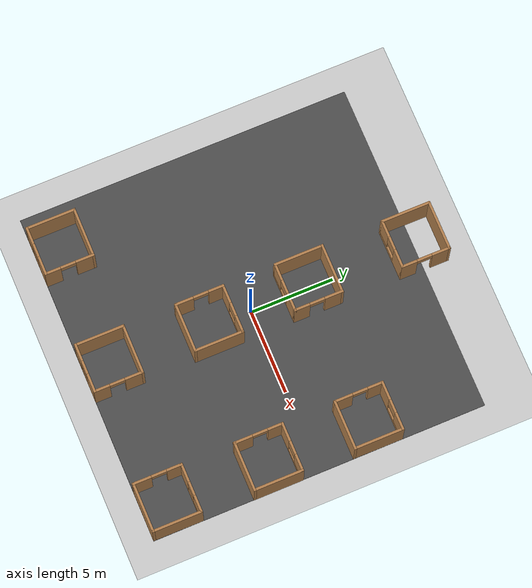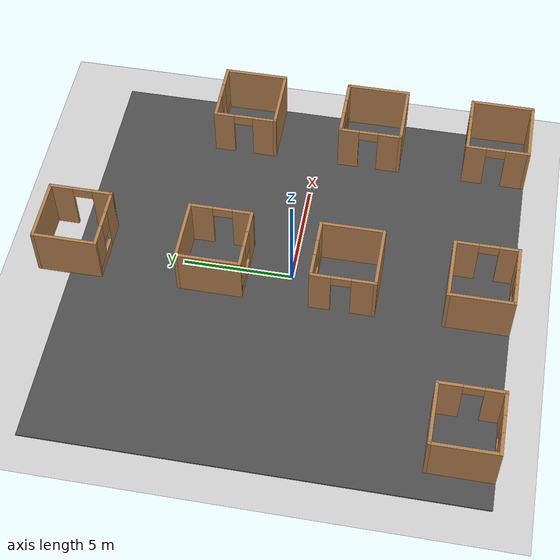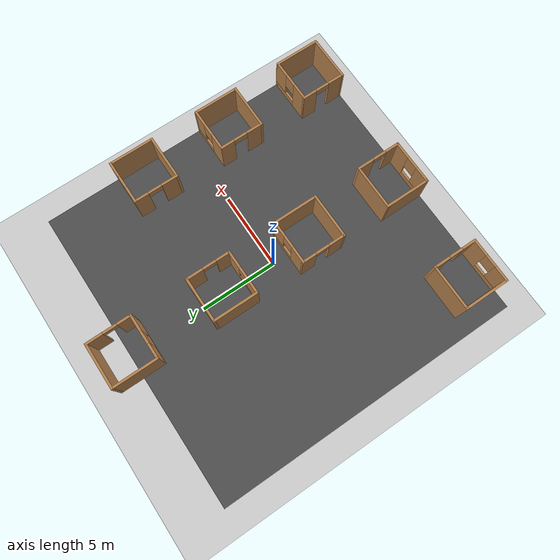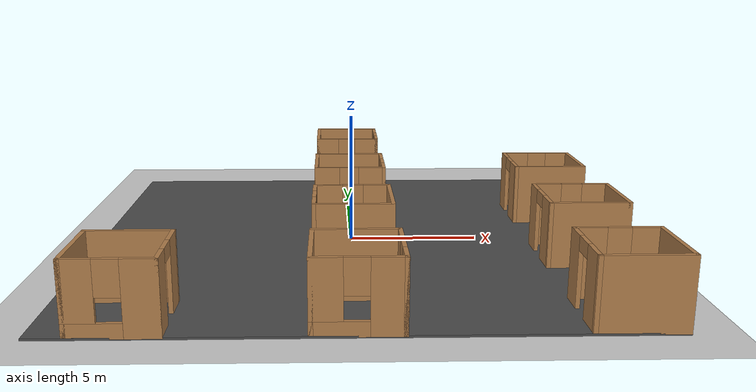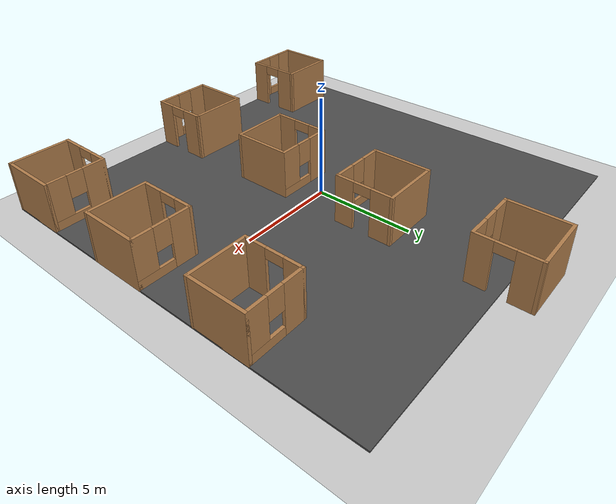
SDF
<sdf version="1.6">
 <world name="default">
  <model name="ground_plane">
   <static>1</static>
   <link name="link">
    <collision name="collision">
     <geometry><plane><normal>0 0 1</normal><size>100 100</size></plane></geometry>
     <surface><friction><ode><mu>100</mu><mu2>50</mu2></ode></friction></surface>
    </collision>
    <visual name="visual">
     <cast_shadows>0</cast_shadows>
     <geometry><plane><normal>0 0 1</normal><size>100 100</size></plane></geometry>
     <material>
      <script><uri>file://media/materials/scripts/gazebo.material</uri><name>Gazebo/Grey</name></script>
     </material>
    </visual>
   </link>
  </model>
  <model name="asphalt_plane">
   <static>1</static>
   <link name="link">
    <collision name="collision"><geometry><box><size>20 20 0.1</size></box></geometry></collision>
    <visual name="visual">
     <cast_shadows>0</cast_shadows>
     <geometry><box><size>20 20 0.1</size></box></geometry>
     <material>
      <script>
       <uri>model://asphalt_plane/materials/scripts</uri>
       <uri>model://asphalt_plane/materials/textures</uri>
       <name>vrc/asphalt</name>
      </script>
     </material>
    </visual>
   </link>
  </model>
  <model name="house1">
   <pose>8.5 -8.5 0 0 -0 0</pose>
   <link name="Wall_2">
    <pose>0 1.425 0 0 -0 0</pose>
    <visual name="Wall_2_Visual_0">
     <pose>-0.9275 0 1.25 0 -0 0</pose>
     <geometry><box><size>1.145 0.15 2.5</size></box></geometry>
     <material>
      <script><uri>file://media/materials/scripts/gazebo.material</uri><name>Gazebo/Wood</name></script>
      <ambient>1 1 1 1</ambient>
     </material>
     <meta><layer>0</layer></meta>
    </visual>
    <collision name="Wall_2_Collision_0">
     <geometry><box><size>1.145 0.15 2.5</size></box></geometry>
     <pose>-0.9275 0 1.25 0 -0 0</pose>
    </collision>
    <visual name="Wall_2_Visual_1">
     <pose>0.5725 0 0.25 0 -0 0</pose>
     <geometry><box><size>1.855 0.15 0.5</size></box></geometry>
     <material>
      <script><uri>file://media/materials/scripts/gazebo.material</uri><name>Gazebo/Wood</name></script>
      <ambient>1 1 1 1</ambient>
     </material>
     <meta><layer>0</layer></meta>
    </visual>
    <collision name="Wall_2_Collision_1">
     <geometry><box><size>1.855 0.15 0.5</size></box></geometry>
     <pose>0.5725 0 0.25 0 -0 0</pose>
    </collision>
    <visual name="Wall_2_Visual_2">
     <pose>0.9725 0 1.5 0 -0 0</pose>
     <geometry><box><size>1.055 0.15 2</size></box></geometry>
     <material>
      <script><uri>file://media/materials/scripts/gazebo.material</uri><name>Gazebo/Wood</name></script>
      <ambient>1 1 1 1</ambient>
     </material>
     <meta><layer>0</layer></meta>
    </visual>
    <collision name="Wall_2_Collision_2">
     <geometry><box><size>1.055 0.15 2</size></box></geometry>
     <pose>0.9725 0 1.5 0 -0 0</pose>
    </collision>
    <visual name="Wall_2_Visual_3">
     <pose>0.045 0 1.9 0 -0 0</pose>
     <geometry><box><size>0.8 0.15 1.2</size></box></geometry>
     <material>
      <script><uri>file://media/materials/scripts/gazebo.material</uri><name>Gazebo/Wood</name></script>
      <ambient>1 1 1 1</ambient>
     </material>
     <meta><layer>0</layer></meta>
    </visual>
    <collision name="Wall_2_Collision_3">
     <geometry><box><size>0.8 0.15 1.2</size></box></geometry>
     <pose>0.045 0 1.9 0 -0 0</pose>
    </collision>
   </link>
   <link name="Wall_3">
    <collision name="Wall_3_Collision">
     <geometry><box><size>3 0.15 2.5</size></box></geometry>
     <pose>0 0 1.25 0 -0 0</pose>
    </collision>
    <visual name="Wall_3_Visual">
     <pose>0 0 1.25 0 -0 0</pose>
     <geometry><box><size>3 0.15 2.5</size></box></geometry>
     <material>
      <script><uri>file://media/materials/scripts/gazebo.material</uri><name>Gazebo/Wood</name></script>
      <ambient>1 1 1 1</ambient>
     </material>
     <meta><layer>0</layer></meta>
    </visual>
    <pose>1.425 0 0 0 -0 -1.5708</pose>
   </link>
   <link name="Wall_4">
    <collision name="Wall_4_Collision">
     <geometry><box><size>3 0.15 2.5</size></box></geometry>
     <pose>0 0 1.25 0 -0 0</pose>
    </collision>
    <visual name="Wall_4_Visual">
     <pose>0 0 1.25 0 -0 0</pose>
     <geometry><box><size>3 0.15 2.5</size></box></geometry>
     <material>
      <script><uri>file://media/materials/scripts/gazebo.material</uri><name>Gazebo/Wood</name></script>
      <ambient>1 1 1 1</ambient>
     </material>
     <meta><layer>0</layer></meta>
    </visual>
    <pose>0 -1.425 0 0 -0 3.14159</pose>
   </link>
   <link name="Wall_5">
    <pose>-1.425 0 0 0 -0 1.5708</pose>
    <visual name="Wall_5_Visual_0">
     <pose>-0.9325 0 1.25 0 -0 0</pose>
     <geometry><box><size>1.135 0.15 2.5</size></box></geometry>
     <material>
      <script><uri>file://media/materials/scripts/gazebo.material</uri><name>Gazebo/Wood</name></script>
      <ambient>1 1 1 1</ambient>
     </material>
     <meta><layer>0</layer></meta>
    </visual>
    <collision name="Wall_5_Collision_0">
     <geometry><box><size>1.135 0.15 2.5</size></box></geometry>
     <pose>-0.9325 0 1.25 0 -0 0</pose>
    </collision>
    <visual name="Wall_5_Visual_1">
     <pose>1.0175 0 1.25 0 -0 0</pose>
     <geometry><box><size>0.965 0.15 2.5</size></box></geometry>
     <material>
      <script><uri>file://media/materials/scripts/gazebo.material</uri><name>Gazebo/Wood</name></script>
      <ambient>1 1 1 1</ambient>
     </material>
     <meta><layer>0</layer></meta>
    </visual>
    <collision name="Wall_5_Collision_1">
     <geometry><box><size>0.965 0.15 2.5</size></box></geometry>
     <pose>1.0175 0 1.25 0 -0 0</pose>
    </collision>
    <visual name="Wall_5_Visual_2">
     <pose>0.085 0 2.25 0 -0 0</pose>
     <geometry><box><size>0.9 0.15 0.5</size></box></geometry>
     <material>
      <script><uri>file://media/materials/scripts/gazebo.material</uri><name>Gazebo/Wood</name></script>
      <ambient>1 1 1 1</ambient>
     </material>
     <meta><layer>0</layer></meta>
    </visual>
    <collision name="Wall_5_Collision_2">
     <geometry><box><size>0.9 0.15 0.5</size></box></geometry>
     <pose>0.085 0 2.25 0 -0 0</pose>
    </collision>
   </link>
   <static>1</static>
  </model>
  <model name="house1_0">
   <pose>0 -8.5 0 0 -0 3.14</pose>
   <link name="Wall_2">
    <pose>0 1.425 0 0 -0 0</pose>
    <visual name="Wall_2_Visual_0">
     <pose>-0.9275 0 1.25 0 -0 0</pose>
     <geometry><box><size>1.145 0.15 2.5</size></box></geometry>
     <material>
      <script><uri>file://media/materials/scripts/gazebo.material</uri><name>Gazebo/Wood</name></script>
      <ambient>1 1 1 1</ambient>
     </material>
     <meta><layer>0</layer></meta>
    </visual>
    <collision name="Wall_2_Collision_0">
     <geometry><box><size>1.145 0.15 2.5</size></box></geometry>
     <pose>-0.9275 0 1.25 0 -0 0</pose>
    </collision>
    <visual name="Wall_2_Visual_1">
     <pose>0.5725 0 0.25 0 -0 0</pose>
     <geometry><box><size>1.855 0.15 0.5</size></box></geometry>
     <material>
      <script><uri>file://media/materials/scripts/gazebo.material</uri><name>Gazebo/Wood</name></script>
      <ambient>1 1 1 1</ambient>
     </material>
     <meta><layer>0</layer></meta>
    </visual>
    <collision name="Wall_2_Collision_1">
     <geometry><box><size>1.855 0.15 0.5</size></box></geometry>
     <pose>0.5725 0 0.25 0 -0 0</pose>
    </collision>
    <visual name="Wall_2_Visual_2">
     <pose>0.9725 0 1.5 0 -0 0</pose>
     <geometry><box><size>1.055 0.15 2</size></box></geometry>
     <material>
      <script><uri>file://media/materials/scripts/gazebo.material</uri><name>Gazebo/Wood</name></script>
      <ambient>1 1 1 1</ambient>
     </material>
     <meta><layer>0</layer></meta>
    </visual>
    <collision name="Wall_2_Collision_2">
     <geometry><box><size>1.055 0.15 2</size></box></geometry>
     <pose>0.9725 0 1.5 0 -0 0</pose>
    </collision>
    <visual name="Wall_2_Visual_3">
     <pose>0.045 0 1.9 0 -0 0</pose>
     <geometry><box><size>0.8 0.15 1.2</size></box></geometry>
     <material>
      <script><uri>file://media/materials/scripts/gazebo.material</uri><name>Gazebo/Wood</name></script>
      <ambient>1 1 1 1</ambient>
     </material>
     <meta><layer>0</layer></meta>
    </visual>
    <collision name="Wall_2_Collision_3">
     <geometry><box><size>0.8 0.15 1.2</size></box></geometry>
     <pose>0.045 0 1.9 0 -0 0</pose>
    </collision>
   </link>
   <link name="Wall_3">
    <collision name="Wall_3_Collision">
     <geometry><box><size>3 0.15 2.5</size></box></geometry>
     <pose>0 0 1.25 0 -0 0</pose>
    </collision>
    <visual name="Wall_3_Visual">
     <pose>0 0 1.25 0 -0 0</pose>
     <geometry><box><size>3 0.15 2.5</size></box></geometry>
     <material>
      <script><uri>file://media/materials/scripts/gazebo.material</uri><name>Gazebo/Wood</name></script>
      <ambient>1 1 1 1</ambient>
     </material>
     <meta><layer>0</layer></meta>
    </visual>
    <pose>1.425 0 0 0 -0 -1.5708</pose>
   </link>
   <link name="Wall_4">
    <collision name="Wall_4_Collision">
     <geometry><box><size>3 0.15 2.5</size></box></geometry>
     <pose>0 0 1.25 0 -0 0</pose>
    </collision>
    <visual name="Wall_4_Visual">
     <pose>0 0 1.25 0 -0 0</pose>
     <geometry><box><size>3 0.15 2.5</size></box></geometry>
     <material>
      <script><uri>file://media/materials/scripts/gazebo.material</uri><name>Gazebo/Wood</name></script>
      <ambient>1 1 1 1</ambient>
     </material>
     <meta><layer>0</layer></meta>
    </visual>
    <pose>0 -1.425 0 0 -0 3.14159</pose>
   </link>
   <link name="Wall_5">
    <pose>-1.425 0 0 0 -0 1.5708</pose>
    <visual name="Wall_5_Visual_0">
     <pose>-0.9325 0 1.25 0 -0 0</pose>
     <geometry><box><size>1.135 0.15 2.5</size></box></geometry>
     <material>
      <script><uri>file://media/materials/scripts/gazebo.material</uri><name>Gazebo/Wood</name></script>
      <ambient>1 1 1 1</ambient>
     </material>
     <meta><layer>0</layer></meta>
    </visual>
    <collision name="Wall_5_Collision_0">
     <geometry><box><size>1.135 0.15 2.5</size></box></geometry>
     <pose>-0.9325 0 1.25 0 -0 0</pose>
    </collision>
    <visual name="Wall_5_Visual_1">
     <pose>1.0175 0 1.25 0 -0 0</pose>
     <geometry><box><size>0.965 0.15 2.5</size></box></geometry>
     <material>
      <script><uri>file://media/materials/scripts/gazebo.material</uri><name>Gazebo/Wood</name></script>
      <ambient>1 1 1 1</ambient>
     </material>
     <meta><layer>0</layer></meta>
    </visual>
    <collision name="Wall_5_Collision_1">
     <geometry><box><size>0.965 0.15 2.5</size></box></geometry>
     <pose>1.0175 0 1.25 0 -0 0</pose>
    </collision>
    <visual name="Wall_5_Visual_2">
     <pose>0.085 0 2.25 0 -0 0</pose>
     <geometry><box><size>0.9 0.15 0.5</size></box></geometry>
     <material>
      <script><uri>file://media/materials/scripts/gazebo.material</uri><name>Gazebo/Wood</name></script>
      <ambient>1 1 1 1</ambient>
     </material>
     <meta><layer>0</layer></meta>
    </visual>
    <collision name="Wall_5_Collision_2">
     <geometry><box><size>0.9 0.15 0.5</size></box></geometry>
     <pose>0.085 0 2.25 0 -0 0</pose>
    </collision>
   </link>
   <static>1</static>
  </model>
  <model name="house1_1">
   <pose>8.5 3.5 0 0 -0 0</pose>
   <link name="Wall_2">
    <pose>0 1.425 0 0 -0 0</pose>
    <visual name="Wall_2_Visual_0">
     <pose>-0.9275 0 1.25 0 -0 0</pose>
     <geometry><box><size>1.145 0.15 2.5</size></box></geometry>
     <material>
      <script><uri>file://media/materials/scripts/gazebo.material</uri><name>Gazebo/Wood</name></script>
      <ambient>1 1 1 1</ambient>
     </material>
     <meta><layer>0</layer></meta>
    </visual>
    <collision name="Wall_2_Collision_0">
     <geometry><box><size>1.145 0.15 2.5</size></box></geometry>
     <pose>-0.9275 0 1.25 0 -0 0</pose>
    </collision>
    <visual name="Wall_2_Visual_1">
     <pose>0.5725 0 0.25 0 -0 0</pose>
     <geometry><box><size>1.855 0.15 0.5</size></box></geometry>
     <material>
      <script><uri>file://media/materials/scripts/gazebo.material</uri><name>Gazebo/Wood</name></script>
      <ambient>1 1 1 1</ambient>
     </material>
     <meta><layer>0</layer></meta>
    </visual>
    <collision name="Wall_2_Collision_1">
     <geometry><box><size>1.855 0.15 0.5</size></box></geometry>
     <pose>0.5725 0 0.25 0 -0 0</pose>
    </collision>
    <visual name="Wall_2_Visual_2">
     <pose>0.9725 0 1.5 0 -0 0</pose>
     <geometry><box><size>1.055 0.15 2</size></box></geometry>
     <material>
      <script><uri>file://media/materials/scripts/gazebo.material</uri><name>Gazebo/Wood</name></script>
      <ambient>1 1 1 1</ambient>
     </material>
     <meta><layer>0</layer></meta>
    </visual>
    <collision name="Wall_2_Collision_2">
     <geometry><box><size>1.055 0.15 2</size></box></geometry>
     <pose>0.9725 0 1.5 0 -0 0</pose>
    </collision>
    <visual name="Wall_2_Visual_3">
     <pose>0.045 0 1.9 0 -0 0</pose>
     <geometry><box><size>0.8 0.15 1.2</size></box></geometry>
     <material>
      <script><uri>file://media/materials/scripts/gazebo.material</uri><name>Gazebo/Wood</name></script>
      <ambient>1 1 1 1</ambient>
     </material>
     <meta><layer>0</layer></meta>
    </visual>
    <collision name="Wall_2_Collision_3">
     <geometry><box><size>0.8 0.15 1.2</size></box></geometry>
     <pose>0.045 0 1.9 0 -0 0</pose>
    </collision>
   </link>
   <link name="Wall_3">
    <collision name="Wall_3_Collision">
     <geometry><box><size>3 0.15 2.5</size></box></geometry>
     <pose>0 0 1.25 0 -0 0</pose>
    </collision>
    <visual name="Wall_3_Visual">
     <pose>0 0 1.25 0 -0 0</pose>
     <geometry><box><size>3 0.15 2.5</size></box></geometry>
     <material>
      <script><uri>file://media/materials/scripts/gazebo.material</uri><name>Gazebo/Wood</name></script>
      <ambient>1 1 1 1</ambient>
     </material>
     <meta><layer>0</layer></meta>
    </visual>
    <pose>1.425 0 0 0 -0 -1.5708</pose>
   </link>
   <link name="Wall_4">
    <collision name="Wall_4_Collision">
     <geometry><box><size>3 0.15 2.5</size></box></geometry>
     <pose>0 0 1.25 0 -0 0</pose>
    </collision>
    <visual name="Wall_4_Visual">
     <pose>0 0 1.25 0 -0 0</pose>
     <geometry><box><size>3 0.15 2.5</size></box></geometry>
     <material>
      <script><uri>file://media/materials/scripts/gazebo.material</uri><name>Gazebo/Wood</name></script>
      <ambient>1 1 1 1</ambient>
     </material>
     <meta><layer>0</layer></meta>
    </visual>
    <pose>0 -1.425 0 0 -0 3.14159</pose>
   </link>
   <link name="Wall_5">
    <pose>-1.425 0 0 0 -0 1.5708</pose>
    <visual name="Wall_5_Visual_0">
     <pose>-0.9325 0 1.25 0 -0 0</pose>
     <geometry><box><size>1.135 0.15 2.5</size></box></geometry>
     <material>
      <script><uri>file://media/materials/scripts/gazebo.material</uri><name>Gazebo/Wood</name></script>
      <ambient>1 1 1 1</ambient>
     </material>
     <meta><layer>0</layer></meta>
    </visual>
    <collision name="Wall_5_Collision_0">
     <geometry><box><size>1.135 0.15 2.5</size></box></geometry>
     <pose>-0.9325 0 1.25 0 -0 0</pose>
    </collision>
    <visual name="Wall_5_Visual_1">
     <pose>1.0175 0 1.25 0 -0 0</pose>
     <geometry><box><size>0.965 0.15 2.5</size></box></geometry>
     <material>
      <script><uri>file://media/materials/scripts/gazebo.material</uri><name>Gazebo/Wood</name></script>
      <ambient>1 1 1 1</ambient>
     </material>
     <meta><layer>0</layer></meta>
    </visual>
    <collision name="Wall_5_Collision_1">
     <geometry><box><size>0.965 0.15 2.5</size></box></geometry>
     <pose>1.0175 0 1.25 0 -0 0</pose>
    </collision>
    <visual name="Wall_5_Visual_2">
     <pose>0.085 0 2.25 0 -0 0</pose>
     <geometry><box><size>0.9 0.15 0.5</size></box></geometry>
     <material>
      <script><uri>file://media/materials/scripts/gazebo.material</uri><name>Gazebo/Wood</name></script>
      <ambient>1 1 1 1</ambient>
     </material>
     <meta><layer>0</layer></meta>
    </visual>
    <collision name="Wall_5_Collision_2">
     <geometry><box><size>0.9 0.15 0.5</size></box></geometry>
     <pose>0.085 0 2.25 0 -0 0</pose>
    </collision>
   </link>
   <static>1</static>
  </model>
  <model name="house1_1_clone_0">
   <pose>8.51979 -2.5 0 0 -0 0</pose>
   <link name="Wall_2">
    <pose>0 1.425 0 0 -0 0</pose>
    <visual name="Wall_2_Visual_0">
     <pose>-0.9275 0 1.25 0 -0 0</pose>
     <geometry><box><size>1.145 0.15 2.5</size></box></geometry>
     <material>
      <script><uri>file://media/materials/scripts/gazebo.material</uri><name>Gazebo/Wood</name></script>
      <ambient>1 1 1 1</ambient>
     </material>
     <meta><layer>0</layer></meta>
    </visual>
    <collision name="Wall_2_Collision_0">
     <geometry><box><size>1.145 0.15 2.5</size></box></geometry>
     <pose>-0.9275 0 1.25 0 -0 0</pose>
    </collision>
    <visual name="Wall_2_Visual_1">
     <pose>0.5725 0 0.25 0 -0 0</pose>
     <geometry><box><size>1.855 0.15 0.5</size></box></geometry>
     <material>
      <script><uri>file://media/materials/scripts/gazebo.material</uri><name>Gazebo/Wood</name></script>
      <ambient>1 1 1 1</ambient>
     </material>
     <meta><layer>0</layer></meta>
    </visual>
    <collision name="Wall_2_Collision_1">
     <geometry><box><size>1.855 0.15 0.5</size></box></geometry>
     <pose>0.5725 0 0.25 0 -0 0</pose>
    </collision>
    <visual name="Wall_2_Visual_2">
     <pose>0.9725 0 1.5 0 -0 0</pose>
     <geometry><box><size>1.055 0.15 2</size></box></geometry>
     <material>
      <script><uri>file://media/materials/scripts/gazebo.material</uri><name>Gazebo/Wood</name></script>
      <ambient>1 1 1 1</ambient>
     </material>
     <meta><layer>0</layer></meta>
    </visual>
    <collision name="Wall_2_Collision_2">
     <geometry><box><size>1.055 0.15 2</size></box></geometry>
     <pose>0.9725 0 1.5 0 -0 0</pose>
    </collision>
    <visual name="Wall_2_Visual_3">
     <pose>0.045 0 1.9 0 -0 0</pose>
     <geometry><box><size>0.8 0.15 1.2</size></box></geometry>
     <material>
      <script><uri>file://media/materials/scripts/gazebo.material</uri><name>Gazebo/Wood</name></script>
      <ambient>1 1 1 1</ambient>
     </material>
     <meta><layer>0</layer></meta>
    </visual>
    <collision name="Wall_2_Collision_3">
     <geometry><box><size>0.8 0.15 1.2</size></box></geometry>
     <pose>0.045 0 1.9 0 -0 0</pose>
    </collision>
   </link>
   <link name="Wall_3">
    <collision name="Wall_3_Collision">
     <geometry><box><size>3 0.15 2.5</size></box></geometry>
     <pose>0 0 1.25 0 -0 0</pose>
    </collision>
    <visual name="Wall_3_Visual">
     <pose>0 0 1.25 0 -0 0</pose>
     <geometry><box><size>3 0.15 2.5</size></box></geometry>
     <material>
      <script><uri>file://media/materials/scripts/gazebo.material</uri><name>Gazebo/Wood</name></script>
      <ambient>1 1 1 1</ambient>
     </material>
     <meta><layer>0</layer></meta>
    </visual>
    <pose>1.425 0 0 0 -0 -1.5708</pose>
   </link>
   <link name="Wall_4">
    <collision name="Wall_4_Collision">
     <geometry><box><size>3 0.15 2.5</size></box></geometry>
     <pose>0 0 1.25 0 -0 0</pose>
    </collision>
    <visual name="Wall_4_Visual">
     <pose>0 0 1.25 0 -0 0</pose>
     <geometry><box><size>3 0.15 2.5</size></box></geometry>
     <material>
      <script><uri>file://media/materials/scripts/gazebo.material</uri><name>Gazebo/Wood</name></script>
      <ambient>1 1 1 1</ambient>
     </material>
     <meta><layer>0</layer></meta>
    </visual>
    <pose>0 -1.425 0 0 -0 3.14159</pose>
   </link>
   <link name="Wall_5">
    <pose>-1.425 0 0 0 -0 1.5708</pose>
    <visual name="Wall_5_Visual_0">
     <pose>-0.9325 0 1.25 0 -0 0</pose>
     <geometry><box><size>1.135 0.15 2.5</size></box></geometry>
     <material>
      <script><uri>file://media/materials/scripts/gazebo.material</uri><name>Gazebo/Wood</name></script>
      <ambient>1 1 1 1</ambient>
     </material>
     <meta><layer>0</layer></meta>
    </visual>
    <collision name="Wall_5_Collision_0">
     <geometry><box><size>1.135 0.15 2.5</size></box></geometry>
     <pose>-0.9325 0 1.25 0 -0 0</pose>
    </collision>
    <visual name="Wall_5_Visual_1">
     <pose>1.0175 0 1.25 0 -0 0</pose>
     <geometry><box><size>0.965 0.15 2.5</size></box></geometry>
     <material>
      <script><uri>file://media/materials/scripts/gazebo.material</uri><name>Gazebo/Wood</name></script>
      <ambient>1 1 1 1</ambient>
     </material>
     <meta><layer>0</layer></meta>
    </visual>
    <collision name="Wall_5_Collision_1">
     <geometry><box><size>0.965 0.15 2.5</size></box></geometry>
     <pose>1.0175 0 1.25 0 -0 0</pose>
    </collision>
    <visual name="Wall_5_Visual_2">
     <pose>0.085 0 2.25 0 -0 0</pose>
     <geometry><box><size>0.9 0.15 0.5</size></box></geometry>
     <material>
      <script><uri>file://media/materials/scripts/gazebo.material</uri><name>Gazebo/Wood</name></script>
      <ambient>1 1 1 1</ambient>
     </material>
     <meta><layer>0</layer></meta>
    </visual>
    <collision name="Wall_5_Collision_2">
     <geometry><box><size>0.9 0.15 0.5</size></box></geometry>
     <pose>0.085 0 2.25 0 -0 0</pose>
    </collision>
   </link>
   <static>1</static>
  </model>
  <model name="house1_0_clone_2">
   <pose>0 3.5 0 0 -0 3.14</pose>
   <link name="Wall_2">
    <pose>0 1.425 0 0 -0 0</pose>
    <visual name="Wall_2_Visual_0">
     <pose>-0.9275 0 1.25 0 -0 0</pose>
     <geometry><box><size>1.145 0.15 2.5</size></box></geometry>
     <material>
      <script><uri>file://media/materials/scripts/gazebo.material</uri><name>Gazebo/Wood</name></script>
      <ambient>1 1 1 1</ambient>
     </material>
     <meta><layer>0</layer></meta>
    </visual>
    <collision name="Wall_2_Collision_0">
     <geometry><box><size>1.145 0.15 2.5</size></box></geometry>
     <pose>-0.9275 0 1.25 0 -0 0</pose>
    </collision>
    <visual name="Wall_2_Visual_1">
     <pose>0.5725 0 0.25 0 -0 0</pose>
     <geometry><box><size>1.855 0.15 0.5</size></box></geometry>
     <material>
      <script><uri>file://media/materials/scripts/gazebo.material</uri><name>Gazebo/Wood</name></script>
      <ambient>1 1 1 1</ambient>
     </material>
     <meta><layer>0</layer></meta>
    </visual>
    <collision name="Wall_2_Collision_1">
     <geometry><box><size>1.855 0.15 0.5</size></box></geometry>
     <pose>0.5725 0 0.25 0 -0 0</pose>
    </collision>
    <visual name="Wall_2_Visual_2">
     <pose>0.9725 0 1.5 0 -0 0</pose>
     <geometry><box><size>1.055 0.15 2</size></box></geometry>
     <material>
      <script><uri>file://media/materials/scripts/gazebo.material</uri><name>Gazebo/Wood</name></script>
      <ambient>1 1 1 1</ambient>
     </material>
     <meta><layer>0</layer></meta>
    </visual>
    <collision name="Wall_2_Collision_2">
     <geometry><box><size>1.055 0.15 2</size></box></geometry>
     <pose>0.9725 0 1.5 0 -0 0</pose>
    </collision>
    <visual name="Wall_2_Visual_3">
     <pose>0.045 0 1.9 0 -0 0</pose>
     <geometry><box><size>0.8 0.15 1.2</size></box></geometry>
     <material>
      <script><uri>file://media/materials/scripts/gazebo.material</uri><name>Gazebo/Wood</name></script>
      <ambient>1 1 1 1</ambient>
     </material>
     <meta><layer>0</layer></meta>
    </visual>
    <collision name="Wall_2_Collision_3">
     <geometry><box><size>0.8 0.15 1.2</size></box></geometry>
     <pose>0.045 0 1.9 0 -0 0</pose>
    </collision>
   </link>
   <link name="Wall_3">
    <collision name="Wall_3_Collision">
     <geometry><box><size>3 0.15 2.5</size></box></geometry>
     <pose>0 0 1.25 0 -0 0</pose>
    </collision>
    <visual name="Wall_3_Visual">
     <pose>0 0 1.25 0 -0 0</pose>
     <geometry><box><size>3 0.15 2.5</size></box></geometry>
     <material>
      <script><uri>file://media/materials/scripts/gazebo.material</uri><name>Gazebo/Wood</name></script>
      <ambient>1 1 1 1</ambient>
     </material>
     <meta><layer>0</layer></meta>
    </visual>
    <pose>1.425 0 0 0 -0 -1.5708</pose>
   </link>
   <link name="Wall_4">
    <collision name="Wall_4_Collision">
     <geometry><box><size>3 0.15 2.5</size></box></geometry>
     <pose>0 0 1.25 0 -0 0</pose>
    </collision>
    <visual name="Wall_4_Visual">
     <pose>0 0 1.25 0 -0 0</pose>
     <geometry><box><size>3 0.15 2.5</size></box></geometry>
     <material>
      <script><uri>file://media/materials/scripts/gazebo.material</uri><name>Gazebo/Wood</name></script>
      <ambient>1 1 1 1</ambient>
     </material>
     <meta><layer>0</layer></meta>
    </visual>
    <pose>0 -1.425 0 0 -0 3.14159</pose>
   </link>
   <link name="Wall_5">
    <pose>-1.425 0 0 0 -0 1.5708</pose>
    <visual name="Wall_5_Visual_0">
     <pose>-0.9325 0 1.25 0 -0 0</pose>
     <geometry><box><size>1.135 0.15 2.5</size></box></geometry>
     <material>
      <script><uri>file://media/materials/scripts/gazebo.material</uri><name>Gazebo/Wood</name></script>
      <ambient>1 1 1 1</ambient>
     </material>
     <meta><layer>0</layer></meta>
    </visual>
    <collision name="Wall_5_Collision_0">
     <geometry><box><size>1.135 0.15 2.5</size></box></geometry>
     <pose>-0.9325 0 1.25 0 -0 0</pose>
    </collision>
    <visual name="Wall_5_Visual_1">
     <pose>1.0175 0 1.25 0 -0 0</pose>
     <geometry><box><size>0.965 0.15 2.5</size></box></geometry>
     <material>
      <script><uri>file://media/materials/scripts/gazebo.material</uri><name>Gazebo/Wood</name></script>
      <ambient>1 1 1 1</ambient>
     </material>
     <meta><layer>0</layer></meta>
    </visual>
    <collision name="Wall_5_Collision_1">
     <geometry><box><size>0.965 0.15 2.5</size></box></geometry>
     <pose>1.0175 0 1.25 0 -0 0</pose>
    </collision>
    <visual name="Wall_5_Visual_2">
     <pose>0.085 0 2.25 0 -0 0</pose>
     <geometry><box><size>0.9 0.15 0.5</size></box></geometry>
     <material>
      <script><uri>file://media/materials/scripts/gazebo.material</uri><name>Gazebo/Wood</name></script>
      <ambient>1 1 1 1</ambient>
     </material>
     <meta><layer>0</layer></meta>
    </visual>
    <collision name="Wall_5_Collision_2">
     <geometry><box><size>0.9 0.15 0.5</size></box></geometry>
     <pose>0.085 0 2.25 0 -0 0</pose>
    </collision>
   </link>
   <static>1</static>
  </model>
  <model name="house1_0_clone_3">
   <pose>0 10 0 0 -0 3.14</pose>
   <link name="Wall_2">
    <pose>0 1.425 0 0 -0 0</pose>
    <visual name="Wall_2_Visual_0">
     <pose>-0.9275 0 1.25 0 -0 0</pose>
     <geometry><box><size>1.145 0.15 2.5</size></box></geometry>
     <material>
      <script><uri>file://media/materials/scripts/gazebo.material</uri><name>Gazebo/Wood</name></script>
      <ambient>1 1 1 1</ambient>
     </material>
     <meta><layer>0</layer></meta>
    </visual>
    <collision name="Wall_2_Collision_0">
     <geometry><box><size>1.145 0.15 2.5</size></box></geometry>
     <pose>-0.9275 0 1.25 0 -0 0</pose>
    </collision>
    <visual name="Wall_2_Visual_1">
     <pose>0.5725 0 0.25 0 -0 0</pose>
     <geometry><box><size>1.855 0.15 0.5</size></box></geometry>
     <material>
      <script><uri>file://media/materials/scripts/gazebo.material</uri><name>Gazebo/Wood</name></script>
      <ambient>1 1 1 1</ambient>
     </material>
     <meta><layer>0</layer></meta>
    </visual>
    <collision name="Wall_2_Collision_1">
     <geometry><box><size>1.855 0.15 0.5</size></box></geometry>
     <pose>0.5725 0 0.25 0 -0 0</pose>
    </collision>
    <visual name="Wall_2_Visual_2">
     <pose>0.9725 0 1.5 0 -0 0</pose>
     <geometry><box><size>1.055 0.15 2</size></box></geometry>
     <material>
      <script><uri>file://media/materials/scripts/gazebo.material</uri><name>Gazebo/Wood</name></script>
      <ambient>1 1 1 1</ambient>
     </material>
     <meta><layer>0</layer></meta>
    </visual>
    <collision name="Wall_2_Collision_2">
     <geometry><box><size>1.055 0.15 2</size></box></geometry>
     <pose>0.9725 0 1.5 0 -0 0</pose>
    </collision>
    <visual name="Wall_2_Visual_3">
     <pose>0.045 0 1.9 0 -0 0</pose>
     <geometry><box><size>0.8 0.15 1.2</size></box></geometry>
     <material>
      <script><uri>file://media/materials/scripts/gazebo.material</uri><name>Gazebo/Wood</name></script>
      <ambient>1 1 1 1</ambient>
     </material>
     <meta><layer>0</layer></meta>
    </visual>
    <collision name="Wall_2_Collision_3">
     <geometry><box><size>0.8 0.15 1.2</size></box></geometry>
     <pose>0.045 0 1.9 0 -0 0</pose>
    </collision>
   </link>
   <link name="Wall_3">
    <collision name="Wall_3_Collision">
     <geometry><box><size>3 0.15 2.5</size></box></geometry>
     <pose>0 0 1.25 0 -0 0</pose>
    </collision>
    <visual name="Wall_3_Visual">
     <pose>0 0 1.25 0 -0 0</pose>
     <geometry><box><size>3 0.15 2.5</size></box></geometry>
     <material>
      <script><uri>file://media/materials/scripts/gazebo.material</uri><name>Gazebo/Wood</name></script>
      <ambient>1 1 1 1</ambient>
     </material>
     <meta><layer>0</layer></meta>
    </visual>
    <pose>1.425 0 0 0 -0 -1.5708</pose>
   </link>
   <link name="Wall_4">
    <collision name="Wall_4_Collision">
     <geometry><box><size>3 0.15 2.5</size></box></geometry>
     <pose>0 0 1.25 0 -0 0</pose>
    </collision>
    <visual name="Wall_4_Visual">
     <pose>0 0 1.25 0 -0 0</pose>
     <geometry><box><size>3 0.15 2.5</size></box></geometry>
     <material>
      <script><uri>file://media/materials/scripts/gazebo.material</uri><name>Gazebo/Wood</name></script>
      <ambient>1 1 1 1</ambient>
     </material>
     <meta><layer>0</layer></meta>
    </visual>
    <pose>0 -1.425 0 0 -0 3.14159</pose>
   </link>
   <link name="Wall_5">
    <pose>-1.425 0 0 0 -0 1.5708</pose>
    <visual name="Wall_5_Visual_0">
     <pose>-0.9325 0 1.25 0 -0 0</pose>
     <geometry><box><size>1.135 0.15 2.5</size></box></geometry>
     <material>
      <script><uri>file://media/materials/scripts/gazebo.material</uri><name>Gazebo/Wood</name></script>
      <ambient>1 1 1 1</ambient>
     </material>
     <meta><layer>0</layer></meta>
    </visual>
    <collision name="Wall_5_Collision_0">
     <geometry><box><size>1.135 0.15 2.5</size></box></geometry>
     <pose>-0.9325 0 1.25 0 -0 0</pose>
    </collision>
    <visual name="Wall_5_Visual_1">
     <pose>1.0175 0 1.25 0 -0 0</pose>
     <geometry><box><size>0.965 0.15 2.5</size></box></geometry>
     <material>
      <script><uri>file://media/materials/scripts/gazebo.material</uri><name>Gazebo/Wood</name></script>
      <ambient>1 1 1 1</ambient>
     </material>
     <meta><layer>0</layer></meta>
    </visual>
    <collision name="Wall_5_Collision_1">
     <geometry><box><size>0.965 0.15 2.5</size></box></geometry>
     <pose>1.0175 0 1.25 0 -0 0</pose>
    </collision>
    <visual name="Wall_5_Visual_2">
     <pose>0.085 0 2.25 0 -0 0</pose>
     <geometry><box><size>0.9 0.15 0.5</size></box></geometry>
     <material>
      <script><uri>file://media/materials/scripts/gazebo.material</uri><name>Gazebo/Wood</name></script>
      <ambient>1 1 1 1</ambient>
     </material>
     <meta><layer>0</layer></meta>
    </visual>
    <collision name="Wall_5_Collision_2">
     <geometry><box><size>0.9 0.15 0.5</size></box></geometry>
     <pose>0.085 0 2.25 0 -0 0</pose>
    </collision>
   </link>
   <static>1</static>
  </model>
  <model name="house1_0_clone_clone_1">
   <pose>-7.28741 -8.50011 0 0 -0 3.14</pose>
   <link name="Wall_2">
    <pose>0 1.425 0 0 -0 0</pose>
    <visual name="Wall_2_Visual_0">
     <pose>-0.9275 0 1.25 0 -0 0</pose>
     <geometry><box><size>1.145 0.15 2.5</size></box></geometry>
     <material>
      <script><uri>file://media/materials/scripts/gazebo.material</uri><name>Gazebo/Wood</name></script>
      <ambient>1 1 1 1</ambient>
     </material>
     <meta><layer>0</layer></meta>
    </visual>
    <collision name="Wall_2_Collision_0">
     <geometry><box><size>1.145 0.15 2.5</size></box></geometry>
     <pose>-0.9275 0 1.25 0 -0 0</pose>
    </collision>
    <visual name="Wall_2_Visual_1">
     <pose>0.5725 0 0.25 0 -0 0</pose>
     <geometry><box><size>1.855 0.15 0.5</size></box></geometry>
     <material>
      <script><uri>file://media/materials/scripts/gazebo.material</uri><name>Gazebo/Wood</name></script>
      <ambient>1 1 1 1</ambient>
     </material>
     <meta><layer>0</layer></meta>
    </visual>
    <collision name="Wall_2_Collision_1">
     <geometry><box><size>1.855 0.15 0.5</size></box></geometry>
     <pose>0.5725 0 0.25 0 -0 0</pose>
    </collision>
    <visual name="Wall_2_Visual_2">
     <pose>0.9725 0 1.5 0 -0 0</pose>
     <geometry><box><size>1.055 0.15 2</size></box></geometry>
     <material>
      <script><uri>file://media/materials/scripts/gazebo.material</uri><name>Gazebo/Wood</name></script>
      <ambient>1 1 1 1</ambient>
     </material>
     <meta><layer>0</layer></meta>
    </visual>
    <collision name="Wall_2_Collision_2">
     <geometry><box><size>1.055 0.15 2</size></box></geometry>
     <pose>0.9725 0 1.5 0 -0 0</pose>
    </collision>
    <visual name="Wall_2_Visual_3">
     <pose>0.045 0 1.9 0 -0 0</pose>
     <geometry><box><size>0.8 0.15 1.2</size></box></geometry>
     <material>
      <script><uri>file://media/materials/scripts/gazebo.material</uri><name>Gazebo/Wood</name></script>
      <ambient>1 1 1 1</ambient>
     </material>
     <meta><layer>0</layer></meta>
    </visual>
    <collision name="Wall_2_Collision_3">
     <geometry><box><size>0.8 0.15 1.2</size></box></geometry>
     <pose>0.045 0 1.9 0 -0 0</pose>
    </collision>
   </link>
   <link name="Wall_3">
    <collision name="Wall_3_Collision">
     <geometry><box><size>3 0.15 2.5</size></box></geometry>
     <pose>0 0 1.25 0 -0 0</pose>
    </collision>
    <visual name="Wall_3_Visual">
     <pose>0 0 1.25 0 -0 0</pose>
     <geometry><box><size>3 0.15 2.5</size></box></geometry>
     <material>
      <script><uri>file://media/materials/scripts/gazebo.material</uri><name>Gazebo/Wood</name></script>
      <ambient>1 1 1 1</ambient>
     </material>
     <meta><layer>0</layer></meta>
    </visual>
    <pose>1.425 0 0 0 -0 -1.5708</pose>
   </link>
   <link name="Wall_4">
    <collision name="Wall_4_Collision">
     <geometry><box><size>3 0.15 2.5</size></box></geometry>
     <pose>0 0 1.25 0 -0 0</pose>
    </collision>
    <visual name="Wall_4_Visual">
     <pose>0 0 1.25 0 -0 0</pose>
     <geometry><box><size>3 0.15 2.5</size></box></geometry>
     <material>
      <script><uri>file://media/materials/scripts/gazebo.material</uri><name>Gazebo/Wood</name></script>
      <ambient>1 1 1 1</ambient>
     </material>
     <meta><layer>0</layer></meta>
    </visual>
    <pose>0 -1.425 0 0 -0 3.14159</pose>
   </link>
   <link name="Wall_5">
    <pose>-1.425 0 0 0 -0 1.5708</pose>
    <visual name="Wall_5_Visual_0">
     <pose>-0.9325 0 1.25 0 -0 0</pose>
     <geometry><box><size>1.135 0.15 2.5</size></box></geometry>
     <material>
      <script><uri>file://media/materials/scripts/gazebo.material</uri><name>Gazebo/Wood</name></script>
      <ambient>1 1 1 1</ambient>
     </material>
     <meta><layer>0</layer></meta>
    </visual>
    <collision name="Wall_5_Collision_0">
     <geometry><box><size>1.135 0.15 2.5</size></box></geometry>
     <pose>-0.9325 0 1.25 0 -0 0</pose>
    </collision>
    <visual name="Wall_5_Visual_1">
     <pose>1.0175 0 1.25 0 -0 0</pose>
     <geometry><box><size>0.965 0.15 2.5</size></box></geometry>
     <material>
      <script><uri>file://media/materials/scripts/gazebo.material</uri><name>Gazebo/Wood</name></script>
      <ambient>1 1 1 1</ambient>
     </material>
     <meta><layer>0</layer></meta>
    </visual>
    <collision name="Wall_5_Collision_1">
     <geometry><box><size>0.965 0.15 2.5</size></box></geometry>
     <pose>1.0175 0 1.25 0 -0 0</pose>
    </collision>
    <visual name="Wall_5_Visual_2">
     <pose>0.085 0 2.25 0 -0 0</pose>
     <geometry><box><size>0.9 0.15 0.5</size></box></geometry>
     <material>
      <script><uri>file://media/materials/scripts/gazebo.material</uri><name>Gazebo/Wood</name></script>
      <ambient>1 1 1 1</ambient>
     </material>
     <meta><layer>0</layer></meta>
    </visual>
    <collision name="Wall_5_Collision_2">
     <geometry><box><size>0.9 0.15 0.5</size></box></geometry>
     <pose>0.085 0 2.25 0 -0 0</pose>
    </collision>
   </link>
   <static>1</static>
  </model>
  <model name="house1_1_clone_0_clone">
   <pose>0 -2.5 0 0 -0 0</pose>
   <link name="Wall_2">
    <pose>0 1.425 0 0 -0 0</pose>
    <visual name="Wall_2_Visual_0">
     <pose>-0.9275 0 1.25 0 -0 0</pose>
     <geometry><box><size>1.145 0.15 2.5</size></box></geometry>
     <material>
      <script><uri>file://media/materials/scripts/gazebo.material</uri><name>Gazebo/Wood</name></script>
      <ambient>1 1 1 1</ambient>
     </material>
     <meta><layer>0</layer></meta>
    </visual>
    <collision name="Wall_2_Collision_0">
     <geometry><box><size>1.145 0.15 2.5</size></box></geometry>
     <pose>-0.9275 0 1.25 0 -0 0</pose>
    </collision>
    <visual name="Wall_2_Visual_1">
     <pose>0.5725 0 0.25 0 -0 0</pose>
     <geometry><box><size>1.855 0.15 0.5</size></box></geometry>
     <material>
      <script><uri>file://media/materials/scripts/gazebo.material</uri><name>Gazebo/Wood</name></script>
      <ambient>1 1 1 1</ambient>
     </material>
     <meta><layer>0</layer></meta>
    </visual>
    <collision name="Wall_2_Collision_1">
     <geometry><box><size>1.855 0.15 0.5</size></box></geometry>
     <pose>0.5725 0 0.25 0 -0 0</pose>
    </collision>
    <visual name="Wall_2_Visual_2">
     <pose>0.9725 0 1.5 0 -0 0</pose>
     <geometry><box><size>1.055 0.15 2</size></box></geometry>
     <material>
      <script><uri>file://media/materials/scripts/gazebo.material</uri><name>Gazebo/Wood</name></script>
      <ambient>1 1 1 1</ambient>
     </material>
     <meta><layer>0</layer></meta>
    </visual>
    <collision name="Wall_2_Collision_2">
     <geometry><box><size>1.055 0.15 2</size></box></geometry>
     <pose>0.9725 0 1.5 0 -0 0</pose>
    </collision>
    <visual name="Wall_2_Visual_3">
     <pose>0.045 0 1.9 0 -0 0</pose>
     <geometry><box><size>0.8 0.15 1.2</size></box></geometry>
     <material>
      <script><uri>file://media/materials/scripts/gazebo.material</uri><name>Gazebo/Wood</name></script>
      <ambient>1 1 1 1</ambient>
     </material>
     <meta><layer>0</layer></meta>
    </visual>
    <collision name="Wall_2_Collision_3">
     <geometry><box><size>0.8 0.15 1.2</size></box></geometry>
     <pose>0.045 0 1.9 0 -0 0</pose>
    </collision>
   </link>
   <link name="Wall_3">
    <collision name="Wall_3_Collision">
     <geometry><box><size>3 0.15 2.5</size></box></geometry>
     <pose>0 0 1.25 0 -0 0</pose>
    </collision>
    <visual name="Wall_3_Visual">
     <pose>0 0 1.25 0 -0 0</pose>
     <geometry><box><size>3 0.15 2.5</size></box></geometry>
     <material>
      <script><uri>file://media/materials/scripts/gazebo.material</uri><name>Gazebo/Wood</name></script>
      <ambient>1 1 1 1</ambient>
     </material>
     <meta><layer>0</layer></meta>
    </visual>
    <pose>1.425 0 0 0 -0 -1.5708</pose>
   </link>
   <link name="Wall_4">
    <collision name="Wall_4_Collision">
     <geometry><box><size>3 0.15 2.5</size></box></geometry>
     <pose>0 0 1.25 0 -0 0</pose>
    </collision>
    <visual name="Wall_4_Visual">
     <pose>0 0 1.25 0 -0 0</pose>
     <geometry><box><size>3 0.15 2.5</size></box></geometry>
     <material>
      <script><uri>file://media/materials/scripts/gazebo.material</uri><name>Gazebo/Wood</name></script>
      <ambient>1 1 1 1</ambient>
     </material>
     <meta><layer>0</layer></meta>
    </visual>
    <pose>0 -1.425 0 0 -0 3.14159</pose>
   </link>
   <link name="Wall_5">
    <pose>-1.425 0 0 0 -0 1.5708</pose>
    <visual name="Wall_5_Visual_0">
     <pose>-0.9325 0 1.25 0 -0 0</pose>
     <geometry><box><size>1.135 0.15 2.5</size></box></geometry>
     <material>
      <script><uri>file://media/materials/scripts/gazebo.material</uri><name>Gazebo/Wood</name></script>
      <ambient>1 1 1 1</ambient>
     </material>
     <meta><layer>0</layer></meta>
    </visual>
    <collision name="Wall_5_Collision_0">
     <geometry><box><size>1.135 0.15 2.5</size></box></geometry>
     <pose>-0.9325 0 1.25 0 -0 0</pose>
    </collision>
    <visual name="Wall_5_Visual_1">
     <pose>1.0175 0 1.25 0 -0 0</pose>
     <geometry><box><size>0.965 0.15 2.5</size></box></geometry>
     <material>
      <script><uri>file://media/materials/scripts/gazebo.material</uri><name>Gazebo/Wood</name></script>
      <ambient>1 1 1 1</ambient>
     </material>
     <meta><layer>0</layer></meta>
    </visual>
    <collision name="Wall_5_Collision_1">
     <geometry><box><size>0.965 0.15 2.5</size></box></geometry>
     <pose>1.0175 0 1.25 0 -0 0</pose>
    </collision>
    <visual name="Wall_5_Visual_2">
     <pose>0.085 0 2.25 0 -0 0</pose>
     <geometry><box><size>0.9 0.15 0.5</size></box></geometry>
     <material>
      <script><uri>file://media/materials/scripts/gazebo.material</uri><name>Gazebo/Wood</name></script>
      <ambient>1 1 1 1</ambient>
     </material>
     <meta><layer>0</layer></meta>
    </visual>
    <collision name="Wall_5_Collision_2">
     <geometry><box><size>0.9 0.15 0.5</size></box></geometry>
     <pose>0.085 0 2.25 0 -0 0</pose>
    </collision>
   </link>
   <static>1</static>
  </model>
 </world>
</sdf>
